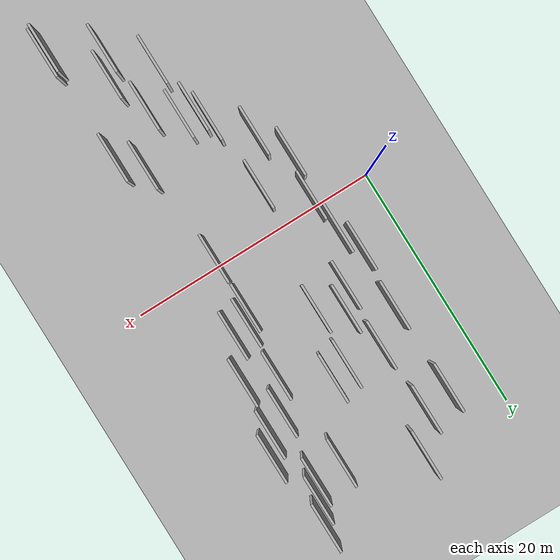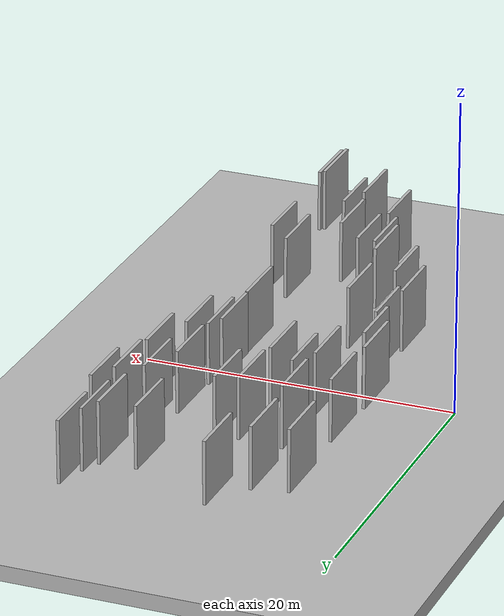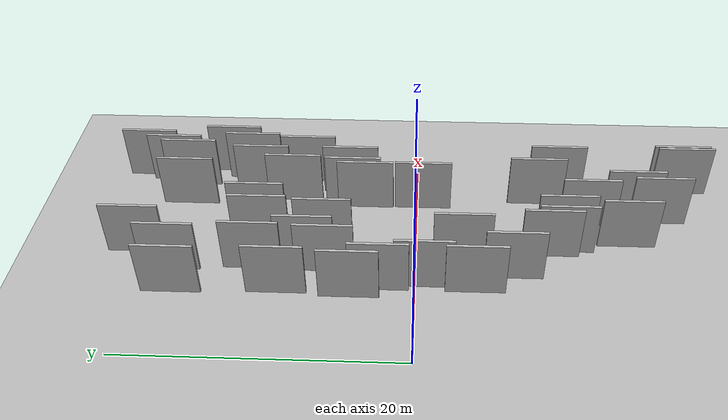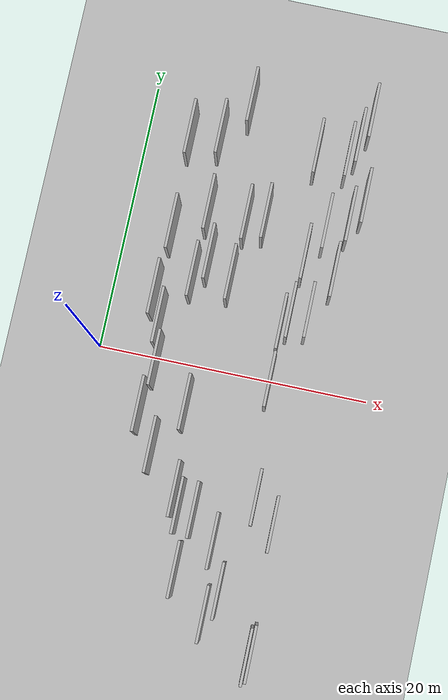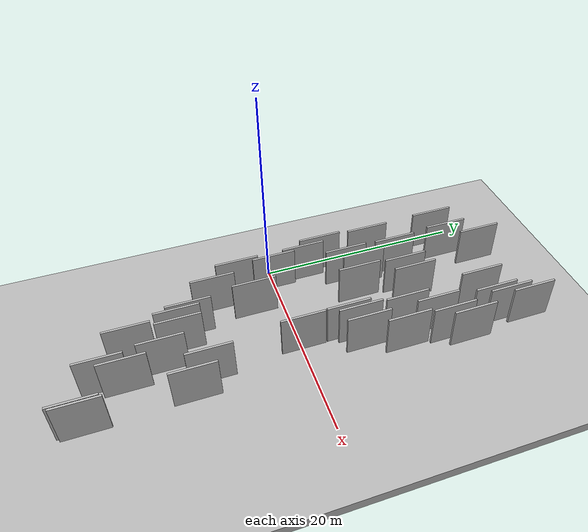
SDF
<?xml version="1.0" encoding="utf-8"?>

<sdf version="1.6">

   <world name="default">

      <gui fullscreen="0">

         <camera name="user_camera">

            <pose>-15 0 4.57585 0 0 0</pose>

            <view_controller>orbit</view_controller>

         </camera>

      </gui>

      <scene>

         <sky>

           <clouds>

             <speed>12</speed>

           </clouds>

         </sky>

         <ambient>0.4 0.4 0.4 1</ambient>

         <background>0.7 0.7 0.7 1</background>

         <shadows>1</shadows>

      </scene>

      <gravity>0 0 -9.8066</gravity>

      <magnetic_field>6e-06 2.3e-05 -4.2e-05</magnetic_field>

      <physics default="0" name="default_physics" type="ode">

         <ode>

            <solver>

               <type>quick</type>

               <iters>10</iters>

               <sor>1.0</sor>

               <use_dynamic_moi_rescaling>0</use_dynamic_moi_rescaling>

            </solver>

            <constraints>

               <cfm>0</cfm>

               <erp>0.2</erp>

               <contact_max_correcting_vel>100</contact_max_correcting_vel>

               <contact_surface_layer>0.001</contact_surface_layer>

            </constraints>

         </ode>

         <max_step_size>0.004</max_step_size>

         <real_time_factor>1</real_time_factor>

         <real_time_update_rate>250</real_time_update_rate>

      </physics>

      <light name="sun" type="directional">

         <cast_shadows>1</cast_shadows>

         <pose>0 0 10 0 0 0</pose>

         <diffuse>0.8 0.8 0.8 1</diffuse>

         <specular>0.2 0.2 0.2 1</specular>

         <attenuation>

            <range>1000</range>

            <constant>0.9</constant>

            <linear>0.01</linear>

            <quadratic>0.001</quadratic>

         </attenuation>

         <direction>-0.5 0.1 -0.9</direction>

      </light>

      <include>

         <name>ground_plane_1</name>

         <uri>model://HANNAS_ground_plane</uri>

         <pose>0 0 0  0 0 0</pose>

      </include>

      <include>

         <name>ground_plane_2</name>

         <uri>model://HANNAS_ground_plane</uri>

         <pose>100 0 0  0 0 0</pose>

      </include>

      <model name="HANNAS_wall_1">

         <static>1</static>

         <pose frame="">12.7719 16.5405 2.5 0.000000 0.000000 1.570796</pose>

         <link name="link">

            <pose frame="">0 0 2.00 0 0 0</pose>

            <collision name="collision">

               <geometry>

                  <box>

                     <size>4.00 0.2 4.00</size>

                  </box>

               </geometry>

               <max_contacts>10</max_contacts>

               <surface>

                  <contact>

                     <ode/>

                  </contact>

                  <bounce/>

                  <friction>

                     <torsional>

                        <ode/>

                     </torsional>

                     <ode/>

                  </friction>

               </surface>

            </collision>

            <visual name="visual">

               <cast_shadows>0</cast_shadows>

               <geometry>

                  <box>

                     <size>4.00 0.2 4.00</size>

                  </box>

               </geometry>

               <material>

                  <script>

                     <uri>model://HANNAS_wall/materials/scripts</uri>

                     <uri>model://HANNAS_wall/materials/textures</uri>

                     <name>vrc/HANNAS_wall</name>

                  </script>

               </material>

            </visual>

            <self_collide>0</self_collide>

            <enable_wind>0</enable_wind>

            <kinematic>0</kinematic>

         </link>

      </model>

      <model name="HANNAS_wall_2">

         <static>1</static>

         <pose frame="">8.3696 -10.2756 2.5 0.000000 0.000000 1.570796</pose>

         <link name="link">

            <pose frame="">0 0 2.00 0 0 0</pose>

            <collision name="collision">

               <geometry>

                  <box>

                     <size>4.00 0.2 4.00</size>

                  </box>

               </geometry>

               <max_contacts>10</max_contacts>

               <surface>

                  <contact>

                     <ode/>

                  </contact>

                  <bounce/>

                  <friction>

                     <torsional>

                        <ode/>

                     </torsional>

                     <ode/>

                  </friction>

               </surface>

            </collision>

            <visual name="visual">

               <cast_shadows>0</cast_shadows>

               <geometry>

                  <box>

                     <size>4.00 0.2 4.00</size>

                  </box>

               </geometry>

               <material>

                  <script>

                     <uri>model://HANNAS_wall/materials/scripts</uri>

                     <uri>model://HANNAS_wall/materials/textures</uri>

                     <name>vrc/HANNAS_wall</name>

                  </script>

               </material>

            </visual>

            <self_collide>0</self_collide>

            <enable_wind>0</enable_wind>

            <kinematic>0</kinematic>

         </link>

      </model>

      <model name="HANNAS_wall_3">

         <static>1</static>

         <pose frame="">15.6994 8.0807 2.5 0.000000 0.000000 1.570796</pose>

         <link name="link">

            <pose frame="">0 0 2.00 0 0 0</pose>

            <collision name="collision">

               <geometry>

                  <box>

                     <size>4.00 0.2 4.00</size>

                  </box>

               </geometry>

               <max_contacts>10</max_contacts>

               <surface>

                  <contact>

                     <ode/>

                  </contact>

                  <bounce/>

                  <friction>

                     <torsional>

                        <ode/>

                     </torsional>

                     <ode/>

                  </friction>

               </surface>

            </collision>

            <visual name="visual">

               <cast_shadows>0</cast_shadows>

               <geometry>

                  <box>

                     <size>4.00 0.2 4.00</size>

                  </box>

               </geometry>

               <material>

                  <script>

                     <uri>model://HANNAS_wall/materials/scripts</uri>

                     <uri>model://HANNAS_wall/materials/textures</uri>

                     <name>vrc/HANNAS_wall</name>

                  </script>

               </material>

            </visual>

            <self_collide>0</self_collide>

            <enable_wind>0</enable_wind>

            <kinematic>0</kinematic>

         </link>

      </model>

      <model name="HANNAS_wall_4">

         <static>1</static>

         <pose frame="">15.5389 17.9189 2.5 0.000000 0.000000 1.570796</pose>

         <link name="link">

            <pose frame="">0 0 2.00 0 0 0</pose>

            <collision name="collision">

               <geometry>

                  <box>

                     <size>4.00 0.2 4.00</size>

                  </box>

               </geometry>

               <max_contacts>10</max_contacts>

               <surface>

                  <contact>

                     <ode/>

                  </contact>

                  <bounce/>

                  <friction>

                     <torsional>

                        <ode/>

                     </torsional>

                     <ode/>

                  </friction>

               </surface>

            </collision>

            <visual name="visual">

               <cast_shadows>0</cast_shadows>

               <geometry>

                  <box>

                     <size>4.00 0.2 4.00</size>

                  </box>

               </geometry>

               <material>

                  <script>

                     <uri>model://HANNAS_wall/materials/scripts</uri>

                     <uri>model://HANNAS_wall/materials/textures</uri>

                     <name>vrc/HANNAS_wall</name>

                  </script>

               </material>

            </visual>

            <self_collide>0</self_collide>

            <enable_wind>0</enable_wind>

            <kinematic>0</kinematic>

         </link>

      </model>

      <model name="HANNAS_wall_5">

         <static>1</static>

         <pose frame="">16.1137 19.8715 2.5 0.000000 0.000000 1.570796</pose>

         <link name="link">

            <pose frame="">0 0 2.00 0 0 0</pose>

            <collision name="collision">

               <geometry>

                  <box>

                     <size>4.00 0.2 4.00</size>

                  </box>

               </geometry>

               <max_contacts>10</max_contacts>

               <surface>

                  <contact>

                     <ode/>

                  </contact>

                  <bounce/>

                  <friction>

                     <torsional>

                        <ode/>

                     </torsional>

                     <ode/>

                  </friction>

               </surface>

            </collision>

            <visual name="visual">

               <cast_shadows>0</cast_shadows>

               <geometry>

                  <box>

                     <size>4.00 0.2 4.00</size>

                  </box>

               </geometry>

               <material>

                  <script>

                     <uri>model://HANNAS_wall/materials/scripts</uri>

                     <uri>model://HANNAS_wall/materials/textures</uri>

                     <name>vrc/HANNAS_wall</name>

                  </script>

               </material>

            </visual>

            <self_collide>0</self_collide>

            <enable_wind>0</enable_wind>

            <kinematic>0</kinematic>

         </link>

      </model>

      <model name="HANNAS_wall_6">

         <static>1</static>

         <pose frame="">8.5572 6.3975 2.5 0.000000 0.000000 1.570796</pose>

         <link name="link">

            <pose frame="">0 0 2.00 0 0 0</pose>

            <collision name="collision">

               <geometry>

                  <box>

                     <size>4.00 0.2 4.00</size>

                  </box>

               </geometry>

               <max_contacts>10</max_contacts>

               <surface>

                  <contact>

                     <ode/>

                  </contact>

                  <bounce/>

                  <friction>

                     <torsional>

                        <ode/>

                     </torsional>

                     <ode/>

                  </friction>

               </surface>

            </collision>

            <visual name="visual">

               <cast_shadows>0</cast_shadows>

               <geometry>

                  <box>

                     <size>4.00 0.2 4.00</size>

                  </box>

               </geometry>

               <material>

                  <script>

                     <uri>model://HANNAS_wall/materials/scripts</uri>

                     <uri>model://HANNAS_wall/materials/textures</uri>

                     <name>vrc/HANNAS_wall</name>

                  </script>

               </material>

            </visual>

            <self_collide>0</self_collide>

            <enable_wind>0</enable_wind>

            <kinematic>0</kinematic>

         </link>

      </model>

      <model name="HANNAS_wall_7">

         <static>1</static>

         <pose frame="">14.5213 4.8947 2.5 0.000000 0.000000 1.570796</pose>

         <link name="link">

            <pose frame="">0 0 2.00 0 0 0</pose>

            <collision name="collision">

               <geometry>

                  <box>

                     <size>4.00 0.2 4.00</size>

                  </box>

               </geometry>

               <max_contacts>10</max_contacts>

               <surface>

                  <contact>

                     <ode/>

                  </contact>

                  <bounce/>

                  <friction>

                     <torsional>

                        <ode/>

                     </torsional>

                     <ode/>

                  </friction>

               </surface>

            </collision>

            <visual name="visual">

               <cast_shadows>0</cast_shadows>

               <geometry>

                  <box>

                     <size>4.00 0.2 4.00</size>

                  </box>

               </geometry>

               <material>

                  <script>

                     <uri>model://HANNAS_wall/materials/scripts</uri>

                     <uri>model://HANNAS_wall/materials/textures</uri>

                     <name>vrc/HANNAS_wall</name>

                  </script>

               </material>

            </visual>

            <self_collide>0</self_collide>

            <enable_wind>0</enable_wind>

            <kinematic>0</kinematic>

         </link>

      </model>

      <model name="HANNAS_wall_8">

         <static>1</static>

         <pose frame="">12.8071 -0.4194 2.5 0.000000 0.000000 1.570796</pose>

         <link name="link">

            <pose frame="">0 0 2.00 0 0 0</pose>

            <collision name="collision">

               <geometry>

                  <box>

                     <size>4.00 0.2 4.00</size>

                  </box>

               </geometry>

               <max_contacts>10</max_contacts>

               <surface>

                  <contact>

                     <ode/>

                  </contact>

                  <bounce/>

                  <friction>

                     <torsional>

                        <ode/>

                     </torsional>

                     <ode/>

                  </friction>

               </surface>

            </collision>

            <visual name="visual">

               <cast_shadows>0</cast_shadows>

               <geometry>

                  <box>

                     <size>4.00 0.2 4.00</size>

                  </box>

               </geometry>

               <material>

                  <script>

                     <uri>model://HANNAS_wall/materials/scripts</uri>

                     <uri>model://HANNAS_wall/materials/textures</uri>

                     <name>vrc/HANNAS_wall</name>

                  </script>

               </material>

            </visual>

            <self_collide>0</self_collide>

            <enable_wind>0</enable_wind>

            <kinematic>0</kinematic>

         </link>

      </model>

      <model name="HANNAS_wall_9">

         <static>1</static>

         <pose frame="">10.1234 11.1885 2.5 0.000000 0.000000 1.570796</pose>

         <link name="link">

            <pose frame="">0 0 2.00 0 0 0</pose>

            <collision name="collision">

               <geometry>

                  <box>

                     <size>4.00 0.2 4.00</size>

                  </box>

               </geometry>

               <max_contacts>10</max_contacts>

               <surface>

                  <contact>

                     <ode/>

                  </contact>

                  <bounce/>

                  <friction>

                     <torsional>

                        <ode/>

                     </torsional>

                     <ode/>

                  </friction>

               </surface>

            </collision>

            <visual name="visual">

               <cast_shadows>0</cast_shadows>

               <geometry>

                  <box>

                     <size>4.00 0.2 4.00</size>

                  </box>

               </geometry>

               <material>

                  <script>

                     <uri>model://HANNAS_wall/materials/scripts</uri>

                     <uri>model://HANNAS_wall/materials/textures</uri>

                     <name>vrc/HANNAS_wall</name>

                  </script>

               </material>

            </visual>

            <self_collide>0</self_collide>

            <enable_wind>0</enable_wind>

            <kinematic>0</kinematic>

         </link>

      </model>

      <model name="HANNAS_wall_10">

         <static>1</static>

         <pose frame="">3.5668 16.0403 2.5 0.000000 0.000000 1.570796</pose>

         <link name="link">

            <pose frame="">0 0 2.00 0 0 0</pose>

            <collision name="collision">

               <geometry>

                  <box>

                     <size>4.00 0.2 4.00</size>

                  </box>

               </geometry>

               <max_contacts>10</max_contacts>

               <surface>

                  <contact>

                     <ode/>

                  </contact>

                  <bounce/>

                  <friction>

                     <torsional>

                        <ode/>

                     </torsional>

                     <ode/>

                  </friction>

               </surface>

            </collision>

            <visual name="visual">

               <cast_shadows>0</cast_shadows>

               <geometry>

                  <box>

                     <size>4.00 0.2 4.00</size>

                  </box>

               </geometry>

               <material>

                  <script>

                     <uri>model://HANNAS_wall/materials/scripts</uri>

                     <uri>model://HANNAS_wall/materials/textures</uri>

                     <name>vrc/HANNAS_wall</name>

                  </script>

               </material>

            </visual>

            <self_collide>0</self_collide>

            <enable_wind>0</enable_wind>

            <kinematic>0</kinematic>

         </link>

      </model>

      <model name="HANNAS_wall_11">

         <static>1</static>

         <pose frame="">13.2486 4.6313 2.5 0.000000 0.000000 1.570796</pose>

         <link name="link">

            <pose frame="">0 0 2.00 0 0 0</pose>

            <collision name="collision">

               <geometry>

                  <box>

                     <size>4.00 0.2 4.00</size>

                  </box>

               </geometry>

               <max_contacts>10</max_contacts>

               <surface>

                  <contact>

                     <ode/>

                  </contact>

                  <bounce/>

                  <friction>

                     <torsional>

                        <ode/>

                     </torsional>

                     <ode/>

                  </friction>

               </surface>

            </collision>

            <visual name="visual">

               <cast_shadows>0</cast_shadows>

               <geometry>

                  <box>

                     <size>4.00 0.2 4.00</size>

                  </box>

               </geometry>

               <material>

                  <script>

                     <uri>model://HANNAS_wall/materials/scripts</uri>

                     <uri>model://HANNAS_wall/materials/textures</uri>

                     <name>vrc/HANNAS_wall</name>

                  </script>

               </material>

            </visual>

            <self_collide>0</self_collide>

            <enable_wind>0</enable_wind>

            <kinematic>0</kinematic>

         </link>

      </model>

      <model name="HANNAS_wall_12">

         <static>1</static>

         <pose frame="">13.5726 -8.6213 2.5 0.000000 0.000000 1.570796</pose>

         <link name="link">

            <pose frame="">0 0 2.00 0 0 0</pose>

            <collision name="collision">

               <geometry>

                  <box>

                     <size>4.00 0.2 4.00</size>

                  </box>

               </geometry>

               <max_contacts>10</max_contacts>

               <surface>

                  <contact>

                     <ode/>

                  </contact>

                  <bounce/>

                  <friction>

                     <torsional>

                        <ode/>

                     </torsional>

                     <ode/>

                  </friction>

               </surface>

            </collision>

            <visual name="visual">

               <cast_shadows>0</cast_shadows>

               <geometry>

                  <box>

                     <size>4.00 0.2 4.00</size>

                  </box>

               </geometry>

               <material>

                  <script>

                     <uri>model://HANNAS_wall/materials/scripts</uri>

                     <uri>model://HANNAS_wall/materials/textures</uri>

                     <name>vrc/HANNAS_wall</name>

                  </script>

               </material>

            </visual>

            <self_collide>0</self_collide>

            <enable_wind>0</enable_wind>

            <kinematic>0</kinematic>

         </link>

      </model>

      <model name="HANNAS_wall_13">

         <static>1</static>

         <pose frame="">5.8875 6.0874 2.5 0.000000 0.000000 1.570796</pose>

         <link name="link">

            <pose frame="">0 0 2.00 0 0 0</pose>

            <collision name="collision">

               <geometry>

                  <box>

                     <size>4.00 0.2 4.00</size>

                  </box>

               </geometry>

               <max_contacts>10</max_contacts>

               <surface>

                  <contact>

                     <ode/>

                  </contact>

                  <bounce/>

                  <friction>

                     <torsional>

                        <ode/>

                     </torsional>

                     <ode/>

                  </friction>

               </surface>

            </collision>

            <visual name="visual">

               <cast_shadows>0</cast_shadows>

               <geometry>

                  <box>

                     <size>4.00 0.2 4.00</size>

                  </box>

               </geometry>

               <material>

                  <script>

                     <uri>model://HANNAS_wall/materials/scripts</uri>

                     <uri>model://HANNAS_wall/materials/textures</uri>

                     <name>vrc/HANNAS_wall</name>

                  </script>

               </material>

            </visual>

            <self_collide>0</self_collide>

            <enable_wind>0</enable_wind>

            <kinematic>0</kinematic>

         </link>

      </model>

      <model name="HANNAS_wall_14">

         <static>1</static>

         <pose frame="">15.9937 12.1829 2.5 0.000000 0.000000 1.570796</pose>

         <link name="link">

            <pose frame="">0 0 2.00 0 0 0</pose>

            <collision name="collision">

               <geometry>

                  <box>

                     <size>4.00 0.2 4.00</size>

                  </box>

               </geometry>

               <max_contacts>10</max_contacts>

               <surface>

                  <contact>

                     <ode/>

                  </contact>

                  <bounce/>

                  <friction>

                     <torsional>

                        <ode/>

                     </torsional>

                     <ode/>

                  </friction>

               </surface>

            </collision>

            <visual name="visual">

               <cast_shadows>0</cast_shadows>

               <geometry>

                  <box>

                     <size>4.00 0.2 4.00</size>

                  </box>

               </geometry>

               <material>

                  <script>

                     <uri>model://HANNAS_wall/materials/scripts</uri>

                     <uri>model://HANNAS_wall/materials/textures</uri>

                     <name>vrc/HANNAS_wall</name>

                  </script>

               </material>

            </visual>

            <self_collide>0</self_collide>

            <enable_wind>0</enable_wind>

            <kinematic>0</kinematic>

         </link>

      </model>

      <model name="HANNAS_wall_15">

         <static>1</static>

         <pose frame="">7.9061 -9.1925 2.5 0.000000 0.000000 1.570796</pose>

         <link name="link">

            <pose frame="">0 0 2.00 0 0 0</pose>

            <collision name="collision">

               <geometry>

                  <box>

                     <size>4.00 0.2 4.00</size>

                  </box>

               </geometry>

               <max_contacts>10</max_contacts>

               <surface>

                  <contact>

                     <ode/>

                  </contact>

                  <bounce/>

                  <friction>

                     <torsional>

                        <ode/>

                     </torsional>

                     <ode/>

                  </friction>

               </surface>

            </collision>

            <visual name="visual">

               <cast_shadows>0</cast_shadows>

               <geometry>

                  <box>

                     <size>4.00 0.2 4.00</size>

                  </box>

               </geometry>

               <material>

                  <script>

                     <uri>model://HANNAS_wall/materials/scripts</uri>

                     <uri>model://HANNAS_wall/materials/textures</uri>

                     <name>vrc/HANNAS_wall</name>

                  </script>

               </material>

            </visual>

            <self_collide>0</self_collide>

            <enable_wind>0</enable_wind>

            <kinematic>0</kinematic>

         </link>

      </model>

      <model name="HANNAS_wall_16">

         <static>1</static>

         <pose frame="">13.4246 8.9197 2.5 0.000000 0.000000 1.570796</pose>

         <link name="link">

            <pose frame="">0 0 2.00 0 0 0</pose>

            <collision name="collision">

               <geometry>

                  <box>

                     <size>4.00 0.2 4.00</size>

                  </box>

               </geometry>

               <max_contacts>10</max_contacts>

               <surface>

                  <contact>

                     <ode/>

                  </contact>

                  <bounce/>

                  <friction>

                     <torsional>

                        <ode/>

                     </torsional>

                     <ode/>

                  </friction>

               </surface>

            </collision>

            <visual name="visual">

               <cast_shadows>0</cast_shadows>

               <geometry>

                  <box>

                     <size>4.00 0.2 4.00</size>

                  </box>

               </geometry>

               <material>

                  <script>

                     <uri>model://HANNAS_wall/materials/scripts</uri>

                     <uri>model://HANNAS_wall/materials/textures</uri>

                     <name>vrc/HANNAS_wall</name>

                  </script>

               </material>

            </visual>

            <self_collide>0</self_collide>

            <enable_wind>0</enable_wind>

            <kinematic>0</kinematic>

         </link>

      </model>

      <model name="HANNAS_wall_17">

         <static>1</static>

         <pose frame="">14.9941 16.7528 2.5 0.000000 0.000000 1.570796</pose>

         <link name="link">

            <pose frame="">0 0 2.00 0 0 0</pose>

            <collision name="collision">

               <geometry>

                  <box>

                     <size>4.00 0.2 4.00</size>

                  </box>

               </geometry>

               <max_contacts>10</max_contacts>

               <surface>

                  <contact>

                     <ode/>

                  </contact>

                  <bounce/>

                  <friction>

                     <torsional>

                        <ode/>

                     </torsional>

                     <ode/>

                  </friction>

               </surface>

            </collision>

            <visual name="visual">

               <cast_shadows>0</cast_shadows>

               <geometry>

                  <box>

                     <size>4.00 0.2 4.00</size>

                  </box>

               </geometry>

               <material>

                  <script>

                     <uri>model://HANNAS_wall/materials/scripts</uri>

                     <uri>model://HANNAS_wall/materials/textures</uri>

                     <name>vrc/HANNAS_wall</name>

                  </script>

               </material>

            </visual>

            <self_collide>0</self_collide>

            <enable_wind>0</enable_wind>

            <kinematic>0</kinematic>

         </link>

      </model>

      <model name="HANNAS_wall_18">

         <static>1</static>

         <pose frame="">6.7661 7.5261 2.5 0.000000 0.000000 1.570796</pose>

         <link name="link">

            <pose frame="">0 0 2.00 0 0 0</pose>

            <collision name="collision">

               <geometry>

                  <box>

                     <size>4.00 0.2 4.00</size>

                  </box>

               </geometry>

               <max_contacts>10</max_contacts>

               <surface>

                  <contact>

                     <ode/>

                  </contact>

                  <bounce/>

                  <friction>

                     <torsional>

                        <ode/>

                     </torsional>

                     <ode/>

                  </friction>

               </surface>

            </collision>

            <visual name="visual">

               <cast_shadows>0</cast_shadows>

               <geometry>

                  <box>

                     <size>4.00 0.2 4.00</size>

                  </box>

               </geometry>

               <material>

                  <script>

                     <uri>model://HANNAS_wall/materials/scripts</uri>

                     <uri>model://HANNAS_wall/materials/textures</uri>

                     <name>vrc/HANNAS_wall</name>

                  </script>

               </material>

            </visual>

            <self_collide>0</self_collide>

            <enable_wind>0</enable_wind>

            <kinematic>0</kinematic>

         </link>

      </model>

      <model name="HANNAS_wall_19">

         <static>1</static>

         <pose frame="">11.6520 -17.1379 2.5 0.000000 0.000000 1.570796</pose>

         <link name="link">

            <pose frame="">0 0 2.00 0 0 0</pose>

            <collision name="collision">

               <geometry>

                  <box>

                     <size>4.00 0.2 4.00</size>

                  </box>

               </geometry>

               <max_contacts>10</max_contacts>

               <surface>

                  <contact>

                     <ode/>

                  </contact>

                  <bounce/>

                  <friction>

                     <torsional>

                        <ode/>

                     </torsional>

                     <ode/>

                  </friction>

               </surface>

            </collision>

            <visual name="visual">

               <cast_shadows>0</cast_shadows>

               <geometry>

                  <box>

                     <size>4.00 0.2 4.00</size>

                  </box>

               </geometry>

               <material>

                  <script>

                     <uri>model://HANNAS_wall/materials/scripts</uri>

                     <uri>model://HANNAS_wall/materials/textures</uri>

                     <name>vrc/HANNAS_wall</name>

                  </script>

               </material>

            </visual>

            <self_collide>0</self_collide>

            <enable_wind>0</enable_wind>

            <kinematic>0</kinematic>

         </link>

      </model>

      <model name="HANNAS_wall_20">

         <static>1</static>

         <pose frame="">5.6376 -6.5772 2.5 0.000000 0.000000 1.570796</pose>

         <link name="link">

            <pose frame="">0 0 2.00 0 0 0</pose>

            <collision name="collision">

               <geometry>

                  <box>

                     <size>4.00 0.2 4.00</size>

                  </box>

               </geometry>

               <max_contacts>10</max_contacts>

               <surface>

                  <contact>

                     <ode/>

                  </contact>

                  <bounce/>

                  <friction>

                     <torsional>

                        <ode/>

                     </torsional>

                     <ode/>

                  </friction>

               </surface>

            </collision>

            <visual name="visual">

               <cast_shadows>0</cast_shadows>

               <geometry>

                  <box>

                     <size>4.00 0.2 4.00</size>

                  </box>

               </geometry>

               <material>

                  <script>

                     <uri>model://HANNAS_wall/materials/scripts</uri>

                     <uri>model://HANNAS_wall/materials/textures</uri>

                     <name>vrc/HANNAS_wall</name>

                  </script>

               </material>

            </visual>

            <self_collide>0</self_collide>

            <enable_wind>0</enable_wind>

            <kinematic>0</kinematic>

         </link>

      </model>

      <model name="HANNAS_wall_21">

         <static>1</static>

         <pose frame="">7.3546 -3.1918 2.5 0.000000 0.000000 1.570796</pose>

         <link name="link">

            <pose frame="">0 0 2.00 0 0 0</pose>

            <collision name="collision">

               <geometry>

                  <box>

                     <size>4.00 0.2 4.00</size>

                  </box>

               </geometry>

               <max_contacts>10</max_contacts>

               <surface>

                  <contact>

                     <ode/>

                  </contact>

                  <bounce/>

                  <friction>

                     <torsional>

                        <ode/>

                     </torsional>

                     <ode/>

                  </friction>

               </surface>

            </collision>

            <visual name="visual">

               <cast_shadows>0</cast_shadows>

               <geometry>

                  <box>

                     <size>4.00 0.2 4.00</size>

                  </box>

               </geometry>

               <material>

                  <script>

                     <uri>model://HANNAS_wall/materials/scripts</uri>

                     <uri>model://HANNAS_wall/materials/textures</uri>

                     <name>vrc/HANNAS_wall</name>

                  </script>

               </material>

            </visual>

            <self_collide>0</self_collide>

            <enable_wind>0</enable_wind>

            <kinematic>0</kinematic>

         </link>

      </model>

      <model name="HANNAS_wall_22">

         <static>1</static>

         <pose frame="">4.2283 2.3947 2.5 0.000000 0.000000 1.570796</pose>

         <link name="link">

            <pose frame="">0 0 2.00 0 0 0</pose>

            <collision name="collision">

               <geometry>

                  <box>

                     <size>4.00 0.2 4.00</size>

                  </box>

               </geometry>

               <max_contacts>10</max_contacts>

               <surface>

                  <contact>

                     <ode/>

                  </contact>

                  <bounce/>

                  <friction>

                     <torsional>

                        <ode/>

                     </torsional>

                     <ode/>

                  </friction>

               </surface>

            </collision>

            <visual name="visual">

               <cast_shadows>0</cast_shadows>

               <geometry>

                  <box>

                     <size>4.00 0.2 4.00</size>

                  </box>

               </geometry>

               <material>

                  <script>

                     <uri>model://HANNAS_wall/materials/scripts</uri>

                     <uri>model://HANNAS_wall/materials/textures</uri>

                     <name>vrc/HANNAS_wall</name>

                  </script>

               </material>

            </visual>

            <self_collide>0</self_collide>

            <enable_wind>0</enable_wind>

            <kinematic>0</kinematic>

         </link>

      </model>

      <model name="HANNAS_wall_23">

         <static>1</static>

         <pose frame="">12.3468 -15.3879 2.5 0.000000 0.000000 1.570796</pose>

         <link name="link">

            <pose frame="">0 0 2.00 0 0 0</pose>

            <collision name="collision">

               <geometry>

                  <box>

                     <size>4.00 0.2 4.00</size>

                  </box>

               </geometry>

               <max_contacts>10</max_contacts>

               <surface>

                  <contact>

                     <ode/>

                  </contact>

                  <bounce/>

                  <friction>

                     <torsional>

                        <ode/>

                     </torsional>

                     <ode/>

                  </friction>

               </surface>

            </collision>

            <visual name="visual">

               <cast_shadows>0</cast_shadows>

               <geometry>

                  <box>

                     <size>4.00 0.2 4.00</size>

                  </box>

               </geometry>

               <material>

                  <script>

                     <uri>model://HANNAS_wall/materials/scripts</uri>

                     <uri>model://HANNAS_wall/materials/textures</uri>

                     <name>vrc/HANNAS_wall</name>

                  </script>

               </material>

            </visual>

            <self_collide>0</self_collide>

            <enable_wind>0</enable_wind>

            <kinematic>0</kinematic>

         </link>

      </model>

      <model name="HANNAS_wall_24">

         <static>1</static>

         <pose frame="">7.4192 19.2319 2.5 0.000000 0.000000 1.570796</pose>

         <link name="link">

            <pose frame="">0 0 2.00 0 0 0</pose>

            <collision name="collision">

               <geometry>

                  <box>

                     <size>4.00 0.2 4.00</size>

                  </box>

               </geometry>

               <max_contacts>10</max_contacts>

               <surface>

                  <contact>

                     <ode/>

                  </contact>

                  <bounce/>

                  <friction>

                     <torsional>

                        <ode/>

                     </torsional>

                     <ode/>

                  </friction>

               </surface>

            </collision>

            <visual name="visual">

               <cast_shadows>0</cast_shadows>

               <geometry>

                  <box>

                     <size>4.00 0.2 4.00</size>

                  </box>

               </geometry>

               <material>

                  <script>

                     <uri>model://HANNAS_wall/materials/scripts</uri>

                     <uri>model://HANNAS_wall/materials/textures</uri>

                     <name>vrc/HANNAS_wall</name>

                  </script>

               </material>

            </visual>

            <self_collide>0</self_collide>

            <enable_wind>0</enable_wind>

            <kinematic>0</kinematic>

         </link>

      </model>

      <model name="HANNAS_wall_25">

         <static>1</static>

         <pose frame="">15.4022 -19.0897 2.5 0.000000 0.000000 1.570796</pose>

         <link name="link">

            <pose frame="">0 0 2.00 0 0 0</pose>

            <collision name="collision">

               <geometry>

                  <box>

                     <size>4.00 0.2 4.00</size>

                  </box>

               </geometry>

               <max_contacts>10</max_contacts>

               <surface>

                  <contact>

                     <ode/>

                  </contact>

                  <bounce/>

                  <friction>

                     <torsional>

                        <ode/>

                     </torsional>

                     <ode/>

                  </friction>

               </surface>

            </collision>

            <visual name="visual">

               <cast_shadows>0</cast_shadows>

               <geometry>

                  <box>

                     <size>4.00 0.2 4.00</size>

                  </box>

               </geometry>

               <material>

                  <script>

                     <uri>model://HANNAS_wall/materials/scripts</uri>

                     <uri>model://HANNAS_wall/materials/textures</uri>

                     <name>vrc/HANNAS_wall</name>

                  </script>

               </material>

            </visual>

            <self_collide>0</self_collide>

            <enable_wind>0</enable_wind>

            <kinematic>0</kinematic>

         </link>

      </model>

      <model name="HANNAS_wall_26">

         <static>1</static>

         <pose frame="">15.0860 -10.2003 2.5 0.000000 0.000000 1.570796</pose>

         <link name="link">

            <pose frame="">0 0 2.00 0 0 0</pose>

            <collision name="collision">

               <geometry>

                  <box>

                     <size>4.00 0.2 4.00</size>

                  </box>

               </geometry>

               <max_contacts>10</max_contacts>

               <surface>

                  <contact>

                     <ode/>

                  </contact>

                  <bounce/>

                  <friction>

                     <torsional>

                        <ode/>

                     </torsional>

                     <ode/>

                  </friction>

               </surface>

            </collision>

            <visual name="visual">

               <cast_shadows>0</cast_shadows>

               <geometry>

                  <box>

                     <size>4.00 0.2 4.00</size>

                  </box>

               </geometry>

               <material>

                  <script>

                     <uri>model://HANNAS_wall/materials/scripts</uri>

                     <uri>model://HANNAS_wall/materials/textures</uri>

                     <name>vrc/HANNAS_wall</name>

                  </script>

               </material>

            </visual>

            <self_collide>0</self_collide>

            <enable_wind>0</enable_wind>

            <kinematic>0</kinematic>

         </link>

      </model>

      <model name="HANNAS_wall_27">

         <static>1</static>

         <pose frame="">9.0704 -14.5850 2.5 0.000000 0.000000 1.570796</pose>

         <link name="link">

            <pose frame="">0 0 2.00 0 0 0</pose>

            <collision name="collision">

               <geometry>

                  <box>

                     <size>4.00 0.2 4.00</size>

                  </box>

               </geometry>

               <max_contacts>10</max_contacts>

               <surface>

                  <contact>

                     <ode/>

                  </contact>

                  <bounce/>

                  <friction>

                     <torsional>

                        <ode/>

                     </torsional>

                     <ode/>

                  </friction>

               </surface>

            </collision>

            <visual name="visual">

               <cast_shadows>0</cast_shadows>

               <geometry>

                  <box>

                     <size>4.00 0.2 4.00</size>

                  </box>

               </geometry>

               <material>

                  <script>

                     <uri>model://HANNAS_wall/materials/scripts</uri>

                     <uri>model://HANNAS_wall/materials/textures</uri>

                     <name>vrc/HANNAS_wall</name>

                  </script>

               </material>

            </visual>

            <self_collide>0</self_collide>

            <enable_wind>0</enable_wind>

            <kinematic>0</kinematic>

         </link>

      </model>

      <model name="HANNAS_wall_28">

         <static>1</static>

         <pose frame="">6.0184 10.9892 2.5 0.000000 0.000000 1.570796</pose>

         <link name="link">

            <pose frame="">0 0 2.00 0 0 0</pose>

            <collision name="collision">

               <geometry>

                  <box>

                     <size>4.00 0.2 4.00</size>

                  </box>

               </geometry>

               <max_contacts>10</max_contacts>

               <surface>

                  <contact>

                     <ode/>

                  </contact>

                  <bounce/>

                  <friction>

                     <torsional>

                        <ode/>

                     </torsional>

                     <ode/>

                  </friction>

               </surface>

            </collision>

            <visual name="visual">

               <cast_shadows>0</cast_shadows>

               <geometry>

                  <box>

                     <size>4.00 0.2 4.00</size>

                  </box>

               </geometry>

               <material>

                  <script>

                     <uri>model://HANNAS_wall/materials/scripts</uri>

                     <uri>model://HANNAS_wall/materials/textures</uri>

                     <name>vrc/HANNAS_wall</name>

                  </script>

               </material>

            </visual>

            <self_collide>0</self_collide>

            <enable_wind>0</enable_wind>

            <kinematic>0</kinematic>

         </link>

      </model>

      <model name="HANNAS_wall_29">

         <static>1</static>

         <pose frame="">4.2206 -3.9849 2.5 0.000000 0.000000 1.570796</pose>

         <link name="link">

            <pose frame="">0 0 2.00 0 0 0</pose>

            <collision name="collision">

               <geometry>

                  <box>

                     <size>4.00 0.2 4.00</size>

                  </box>

               </geometry>

               <max_contacts>10</max_contacts>

               <surface>

                  <contact>

                     <ode/>

                  </contact>

                  <bounce/>

                  <friction>

                     <torsional>

                        <ode/>

                     </torsional>

                     <ode/>

                  </friction>

               </surface>

            </collision>

            <visual name="visual">

               <cast_shadows>0</cast_shadows>

               <geometry>

                  <box>

                     <size>4.00 0.2 4.00</size>

                  </box>

               </geometry>

               <material>

                  <script>

                     <uri>model://HANNAS_wall/materials/scripts</uri>

                     <uri>model://HANNAS_wall/materials/textures</uri>

                     <name>vrc/HANNAS_wall</name>

                  </script>

               </material>

            </visual>

            <self_collide>0</self_collide>

            <enable_wind>0</enable_wind>

            <kinematic>0</kinematic>

         </link>

      </model>

      <model name="HANNAS_wall_30">

         <static>1</static>

         <pose frame="">11.2616 -12.1391 2.5 0.000000 0.000000 1.570796</pose>

         <link name="link">

            <pose frame="">0 0 2.00 0 0 0</pose>

            <collision name="collision">

               <geometry>

                  <box>

                     <size>4.00 0.2 4.00</size>

                  </box>

               </geometry>

               <max_contacts>10</max_contacts>

               <surface>

                  <contact>

                     <ode/>

                  </contact>

                  <bounce/>

                  <friction>

                     <torsional>

                        <ode/>

                     </torsional>

                     <ode/>

                  </friction>

               </surface>

            </collision>

            <visual name="visual">

               <cast_shadows>0</cast_shadows>

               <geometry>

                  <box>

                     <size>4.00 0.2 4.00</size>

                  </box>

               </geometry>

               <material>

                  <script>

                     <uri>model://HANNAS_wall/materials/scripts</uri>

                     <uri>model://HANNAS_wall/materials/textures</uri>

                     <name>vrc/HANNAS_wall</name>

                  </script>

               </material>

            </visual>

            <self_collide>0</self_collide>

            <enable_wind>0</enable_wind>

            <kinematic>0</kinematic>

         </link>

      </model>

      <model name="HANNAS_wall_31">

         <static>1</static>

         <pose frame="">12.7554 3.7188 2.5 0.000000 0.000000 1.570796</pose>

         <link name="link">

            <pose frame="">0 0 2.00 0 0 0</pose>

            <collision name="collision">

               <geometry>

                  <box>

                     <size>4.00 0.2 4.00</size>

                  </box>

               </geometry>

               <max_contacts>10</max_contacts>

               <surface>

                  <contact>

                     <ode/>

                  </contact>

                  <bounce/>

                  <friction>

                     <torsional>

                        <ode/>

                     </torsional>

                     <ode/>

                  </friction>

               </surface>

            </collision>

            <visual name="visual">

               <cast_shadows>0</cast_shadows>

               <geometry>

                  <box>

                     <size>4.00 0.2 4.00</size>

                  </box>

               </geometry>

               <material>

                  <script>

                     <uri>model://HANNAS_wall/materials/scripts</uri>

                     <uri>model://HANNAS_wall/materials/textures</uri>

                     <name>vrc/HANNAS_wall</name>

                  </script>

               </material>

            </visual>

            <self_collide>0</self_collide>

            <enable_wind>0</enable_wind>

            <kinematic>0</kinematic>

         </link>

      </model>

      <model name="HANNAS_wall_32">

         <static>1</static>

         <pose frame="">9.4987 -10.3538 2.5 0.000000 0.000000 1.570796</pose>

         <link name="link">

            <pose frame="">0 0 2.00 0 0 0</pose>

            <collision name="collision">

               <geometry>

                  <box>

                     <size>4.00 0.2 4.00</size>

                  </box>

               </geometry>

               <max_contacts>10</max_contacts>

               <surface>

                  <contact>

                     <ode/>

                  </contact>

                  <bounce/>

                  <friction>

                     <torsional>

                        <ode/>

                     </torsional>

                     <ode/>

                  </friction>

               </surface>

            </collision>

            <visual name="visual">

               <cast_shadows>0</cast_shadows>

               <geometry>

                  <box>

                     <size>4.00 0.2 4.00</size>

                  </box>

               </geometry>

               <material>

                  <script>

                     <uri>model://HANNAS_wall/materials/scripts</uri>

                     <uri>model://HANNAS_wall/materials/textures</uri>

                     <name>vrc/HANNAS_wall</name>

                  </script>

               </material>

            </visual>

            <self_collide>0</self_collide>

            <enable_wind>0</enable_wind>

            <kinematic>0</kinematic>

         </link>

      </model>

      <model name="HANNAS_wall_33">

         <static>1</static>

         <pose frame="">8.7788 10.8198 2.5 0.000000 0.000000 1.570796</pose>

         <link name="link">

            <pose frame="">0 0 2.00 0 0 0</pose>

            <collision name="collision">

               <geometry>

                  <box>

                     <size>4.00 0.2 4.00</size>

                  </box>

               </geometry>

               <max_contacts>10</max_contacts>

               <surface>

                  <contact>

                     <ode/>

                  </contact>

                  <bounce/>

                  <friction>

                     <torsional>

                        <ode/>

                     </torsional>

                     <ode/>

                  </friction>

               </surface>

            </collision>

            <visual name="visual">

               <cast_shadows>0</cast_shadows>

               <geometry>

                  <box>

                     <size>4.00 0.2 4.00</size>

                  </box>

               </geometry>

               <material>

                  <script>

                     <uri>model://HANNAS_wall/materials/scripts</uri>

                     <uri>model://HANNAS_wall/materials/textures</uri>

                     <name>vrc/HANNAS_wall</name>

                  </script>

               </material>

            </visual>

            <self_collide>0</self_collide>

            <enable_wind>0</enable_wind>

            <kinematic>0</kinematic>

         </link>

      </model>

      <model name="HANNAS_wall_34">

         <static>1</static>

         <pose frame="">3.4947 4.3020 2.5 0.000000 0.000000 1.570796</pose>

         <link name="link">

            <pose frame="">0 0 2.00 0 0 0</pose>

            <collision name="collision">

               <geometry>

                  <box>

                     <size>4.00 0.2 4.00</size>

                  </box>

               </geometry>

               <max_contacts>10</max_contacts>

               <surface>

                  <contact>

                     <ode/>

                  </contact>

                  <bounce/>

                  <friction>

                     <torsional>

                        <ode/>

                     </torsional>

                     <ode/>

                  </friction>

               </surface>

            </collision>

            <visual name="visual">

               <cast_shadows>0</cast_shadows>

               <geometry>

                  <box>

                     <size>4.00 0.2 4.00</size>

                  </box>

               </geometry>

               <material>

                  <script>

                     <uri>model://HANNAS_wall/materials/scripts</uri>

                     <uri>model://HANNAS_wall/materials/textures</uri>

                     <name>vrc/HANNAS_wall</name>

                  </script>

               </material>

            </visual>

            <self_collide>0</self_collide>

            <enable_wind>0</enable_wind>

            <kinematic>0</kinematic>

         </link>

      </model>

      <model name="HANNAS_wall_35">

         <static>1</static>

         <pose frame="">16.7967 13.7059 2.5 0.000000 0.000000 1.570796</pose>

         <link name="link">

            <pose frame="">0 0 2.00 0 0 0</pose>

            <collision name="collision">

               <geometry>

                  <box>

                     <size>4.00 0.2 4.00</size>

                  </box>

               </geometry>

               <max_contacts>10</max_contacts>

               <surface>

                  <contact>

                     <ode/>

                  </contact>

                  <bounce/>

                  <friction>

                     <torsional>

                        <ode/>

                     </torsional>

                     <ode/>

                  </friction>

               </surface>

            </collision>

            <visual name="visual">

               <cast_shadows>0</cast_shadows>

               <geometry>

                  <box>

                     <size>4.00 0.2 4.00</size>

                  </box>

               </geometry>

               <material>

                  <script>

                     <uri>model://HANNAS_wall/materials/scripts</uri>

                     <uri>model://HANNAS_wall/materials/textures</uri>

                     <name>vrc/HANNAS_wall</name>

                  </script>

               </material>

            </visual>

            <self_collide>0</self_collide>

            <enable_wind>0</enable_wind>

            <kinematic>0</kinematic>

         </link>

      </model>

      <model name="HANNAS_wall_36">

         <static>1</static>

         <pose frame="">3.7336 9.1007 2.5 0.000000 0.000000 1.570796</pose>

         <link name="link">

            <pose frame="">0 0 2.00 0 0 0</pose>

            <collision name="collision">

               <geometry>

                  <box>

                     <size>4.00 0.2 4.00</size>

                  </box>

               </geometry>

               <max_contacts>10</max_contacts>

               <surface>

                  <contact>

                     <ode/>

                  </contact>

                  <bounce/>

                  <friction>

                     <torsional>

                        <ode/>

                     </torsional>

                     <ode/>

                  </friction>

               </surface>

            </collision>

            <visual name="visual">

               <cast_shadows>0</cast_shadows>

               <geometry>

                  <box>

                     <size>4.00 0.2 4.00</size>

                  </box>

               </geometry>

               <material>

                  <script>

                     <uri>model://HANNAS_wall/materials/scripts</uri>

                     <uri>model://HANNAS_wall/materials/textures</uri>

                     <name>vrc/HANNAS_wall</name>

                  </script>

               </material>

            </visual>

            <self_collide>0</self_collide>

            <enable_wind>0</enable_wind>

            <kinematic>0</kinematic>

         </link>

      </model>

      <model name="HANNAS_wall_37">

         <static>1</static>

         <pose frame="">4.6094 -0.5848 2.5 0.000000 0.000000 1.570796</pose>

         <link name="link">

            <pose frame="">0 0 2.00 0 0 0</pose>

            <collision name="collision">

               <geometry>

                  <box>

                     <size>4.00 0.2 4.00</size>

                  </box>

               </geometry>

               <max_contacts>10</max_contacts>

               <surface>

                  <contact>

                     <ode/>

                  </contact>

                  <bounce/>

                  <friction>

                     <torsional>

                        <ode/>

                     </torsional>

                     <ode/>

                  </friction>

               </surface>

            </collision>

            <visual name="visual">

               <cast_shadows>0</cast_shadows>

               <geometry>

                  <box>

                     <size>4.00 0.2 4.00</size>

                  </box>

               </geometry>

               <material>

                  <script>

                     <uri>model://HANNAS_wall/materials/scripts</uri>

                     <uri>model://HANNAS_wall/materials/textures</uri>

                     <name>vrc/HANNAS_wall</name>

                  </script>

               </material>

            </visual>

            <self_collide>0</self_collide>

            <enable_wind>0</enable_wind>

            <kinematic>0</kinematic>

         </link>

      </model>

      <model name="HANNAS_wall_38">

         <static>1</static>

         <pose frame="">15.1603 -19.3318 2.5 0.000000 0.000000 1.570796</pose>

         <link name="link">

            <pose frame="">0 0 2.00 0 0 0</pose>

            <collision name="collision">

               <geometry>

                  <box>

                     <size>4.00 0.2 4.00</size>

                  </box>

               </geometry>

               <max_contacts>10</max_contacts>

               <surface>

                  <contact>

                     <ode/>

                  </contact>

                  <bounce/>

                  <friction>

                     <torsional>

                        <ode/>

                     </torsional>

                     <ode/>

                  </friction>

               </surface>

            </collision>

            <visual name="visual">

               <cast_shadows>0</cast_shadows>

               <geometry>

                  <box>

                     <size>4.00 0.2 4.00</size>

                  </box>

               </geometry>

               <material>

                  <script>

                     <uri>model://HANNAS_wall/materials/scripts</uri>

                     <uri>model://HANNAS_wall/materials/textures</uri>

                     <name>vrc/HANNAS_wall</name>

                  </script>

               </material>

            </visual>

            <self_collide>0</self_collide>

            <enable_wind>0</enable_wind>

            <kinematic>0</kinematic>

         </link>

      </model>

      <model name="HANNAS_wall_39">

         <static>1</static>

         <pose frame="">14.4647 11.3549 2.5 0.000000 0.000000 1.570796</pose>

         <link name="link">

            <pose frame="">0 0 2.00 0 0 0</pose>

            <collision name="collision">

               <geometry>

                  <box>

                     <size>4.00 0.2 4.00</size>

                  </box>

               </geometry>

               <max_contacts>10</max_contacts>

               <surface>

                  <contact>

                     <ode/>

                  </contact>

                  <bounce/>

                  <friction>

                     <torsional>

                        <ode/>

                     </torsional>

                     <ode/>

                  </friction>

               </surface>

            </collision>

            <visual name="visual">

               <cast_shadows>0</cast_shadows>

               <geometry>

                  <box>

                     <size>4.00 0.2 4.00</size>

                  </box>

               </geometry>

               <material>

                  <script>

                     <uri>model://HANNAS_wall/materials/scripts</uri>

                     <uri>model://HANNAS_wall/materials/textures</uri>

                     <name>vrc/HANNAS_wall</name>

                  </script>

               </material>

            </visual>

            <self_collide>0</self_collide>

            <enable_wind>0</enable_wind>

            <kinematic>0</kinematic>

         </link>

      </model>

      <model name="HANNAS_wall_40">

         <static>1</static>

         <pose frame="">5.7119 16.5138 2.5 0.000000 0.000000 1.570796</pose>

         <link name="link">

            <pose frame="">0 0 2.00 0 0 0</pose>

            <collision name="collision">

               <geometry>

                  <box>

                     <size>4.00 0.2 4.00</size>

                  </box>

               </geometry>

               <max_contacts>10</max_contacts>

               <surface>

                  <contact>

                     <ode/>

                  </contact>

                  <bounce/>

                  <friction>

                     <torsional>

                        <ode/>

                     </torsional>

                     <ode/>

                  </friction>

               </surface>

            </collision>

            <visual name="visual">

               <cast_shadows>0</cast_shadows>

               <geometry>

                  <box>

                     <size>4.00 0.2 4.00</size>

                  </box>

               </geometry>

               <material>

                  <script>

                     <uri>model://HANNAS_wall/materials/scripts</uri>

                     <uri>model://HANNAS_wall/materials/textures</uri>

                     <name>vrc/HANNAS_wall</name>

                  </script>

               </material>

            </visual>

            <self_collide>0</self_collide>

            <enable_wind>0</enable_wind>

            <kinematic>0</kinematic>

         </link>

      </model>

   </world>

</sdf>
